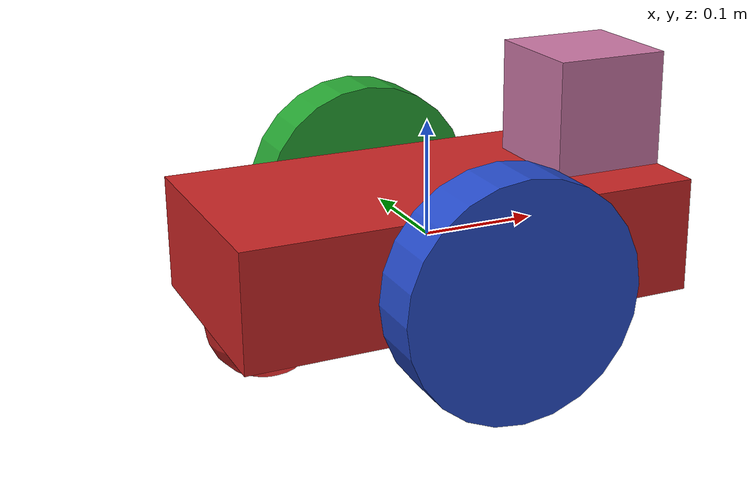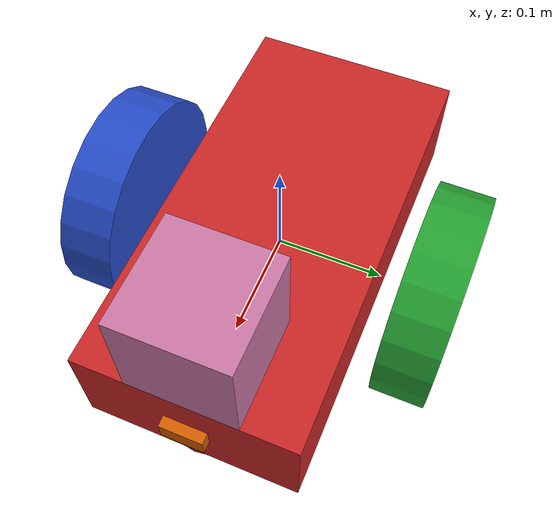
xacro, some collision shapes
<?xml version='1.0'?>

<robot name="udacity_bot" xmlns:xacro="http://www.ros.org/wiki/xacro">

  <xacro:include filename="$(find slam-simulation)/urdf/udacity_bot.gazebo" />

  <link name="robot_footprint"></link>

  <joint name="robot_footprint_joint" type="fixed">
    <origin xyz="0 0 0" rpy="0 0 0" />
    <parent link="robot_footprint"/>
    <child link="chassis" />
  </joint>

  <link name='chassis'>
    <pose>0 0 0.1 0 0 0</pose>

    <inertial>
      <mass value="15.0"/>
      <origin xyz="0.0 0 0" rpy="0 0 0"/>
      <inertia
          ixx="0.3" ixy="0" ixz="0"
          iyy="0.3" iyz="0"
          izz="0.3"
	  />
    </inertial>

    <collision name='collision'>
      <origin xyz="0 0 0" rpy=" 0 0 0"/>
      <geometry>
        <box size=".4 .2 .1"/>
      </geometry>
    </collision>

    <visual name='chassis_visual'>
      <origin xyz="0 0 0" rpy=" 0 0 0"/>
      <geometry>
        <box size=".4 .2 .1"/>
      </geometry>
    </visual>

    <collision name='back_caster_collision'>
      <origin xyz="-0.15 0 -0.05" rpy=" 0 0 0"/>
      <geometry>
        <sphere radius="0.05"/>
      </geometry>
      <surface>
        <friction>
          <ode>
            <mu>0</mu>
            <mu2>0</mu2>
            <slip1>1.0</slip1>
            <slip2>1.0</slip2>
          </ode>
        </friction>
      </surface>
    </collision>

    <visual name='back_caster_visual'>
      <origin xyz="-0.15 0 -0.05" rpy=" 0 0 0"/>
      <geometry>
        <sphere radius="0.05"/>
      </geometry>
    </visual>

    <collision name='front_caster_collision'>
      <origin xyz="0.15 0 -0.05" rpy=" 0 0 0"/>
      <geometry>
        <sphere radius="0.05"/>
      </geometry>
      <surface>
        <friction>
          <ode>
            <mu>0</mu>
            <mu2>0</mu2>
            <slip1>1.0</slip1>
            <slip2>1.0</slip2>
          </ode>
        </friction>
      </surface>
    </collision>

    <visual name='front_caster_visual'>
      <origin xyz="0.15 0 -0.05" rpy=" 0 0 0"/>
      <geometry>
        <sphere radius="0.05"/>
      </geometry>
    </visual>

  </link>

  <link name='right_wheel'>
    <pose>0 0 0 0 0 0</pose>

    <inertial>
      <mass value="5.0"/>
      <origin xyz="0.0 0 0" rpy="0 1.5707 1.5707"/>
      <inertia
          ixx="0.1" ixy="0" ixz="0"
          iyy="0.1" iyz="0"
          izz="0.1"
	  />
    </inertial>

    <collision name='right_wheel_collision'>
      <origin xyz="0 0 0" rpy="0 1.5707 1.5707"/>
      <geometry>
        <cylinder radius="0.1" length="0.05"/>
      </geometry>
      <surface>
        <friction>
          <ode>
            <mu>0</mu>
            <mu2>0</mu2>
            <slip1>1.0</slip1>
            <slip2>1.0</slip2>
          </ode>
        </friction>
      </surface>
    </collision>

    <visual name='right_wheel_visual'>
      <origin xyz="0 0 0" rpy="0 1.5707 1.5707"/>
      <geometry>
	<cylinder radius="0.1" length="0.05"/>
      </geometry>
    </visual>
  </link>

  <joint type="continuous" name="right_wheel_hinge">
    <origin xyz="0 -0.15 0" rpy="0 0 0"/>
    <child link="right_wheel"/>
    <parent link="chassis"/>
    <axis xyz="0 1 0" rpy="0 0 0"/>
    <limit effort="10000" velocity="1000"/>
    <joint_properties damping="1.0" friction="1.0"/>
  </joint>

  <link name='left_wheel'>
    <pose>0 0 0 0 0 0</pose>

    <inertial>
      <mass value="5.0"/>
      <origin xyz="0.0 0 0" rpy="0 1.5707 1.5707"/>
      <inertia
          ixx="0.1" ixy="0" ixz="0"
          iyy="0.1" iyz="0"
          izz="0.1"
	  />
    </inertial>

    <collision name='left_wheel_collision'>
      <origin xyz="0 0 0" rpy="0 1.5707 1.5707"/>
      <geometry>
        <cylinder radius="0.1" length="0.05"/>
      </geometry>
      <surface>
        <friction>
          <ode>
            <mu>0</mu>
            <mu2>0</mu2>
            <slip1>1.0</slip1>
            <slip2>1.0</slip2>
          </ode>
        </friction>
      </surface>
    </collision>

    <visual name='left_wheel_visual'>
      <origin xyz="0 0 0" rpy="0 1.5707 1.5707"/>
      <geometry>
	<cylinder radius="0.1" length="0.05"/>
      </geometry>
    </visual>
  </link>

  <joint type="continuous" name="left_wheel_hinge">
    <origin xyz="0 0.15 0" rpy="0 0 0"/>
    <child link="left_wheel"/>
    <parent link="chassis"/>
    <axis xyz="0 1 0" rpy="0 0 0"/>
    <limit effort="10000" velocity="1000"/>
    <joint_properties damping="1.0" friction="1.0"/>
  </joint>

  <link name='camera_link'>
    <pose>0 0 0 0 0 0</pose>
    <inertial>
      <mass value="0"/>
      <origin xyz="0.0 0 0" rpy="0 0 0"/>
      <inertia
          ixx="1e-6" ixy="0" ixz="0"
          iyy="1e-6" iyz="0"
          izz="1e-6"
	  />
    </inertial>
  </link>

  <joint type="fixed" name="camera_joint">
    <origin xyz="0 0 0" rpy="-1.57 0 -1.57"/>
    <child link="camera_link"/>
    <parent link="chassis"/>
  </joint>

  <link name='camera_rgbd_frame'>
    <pose>0 0 0 0 0 0</pose>
    <inertial>
      <mass value="0.1"/>
      <origin xyz="0.0 0 0" rpy="0 0 0"/>
      <inertia
          ixx="1e-6" ixy="0" ixz="0"
          iyy="1e-6" iyz="0"
          izz="1e-6"
	  />
    </inertial>

    <collision name='camera_rgb_collision'>
      <origin xyz="0 0 0" rpy="0 0 0"/>
      <geometry>
	<box size="0.02 0.04 0.02"/>
      </geometry>
    </collision>

    <visual name='camera_rgb_visual'>
      <origin xyz="0 0 0" rpy="0 0 0"/>
      <geometry>
	<box size="0.02 0.04 0.02"/>
      </geometry>
    </visual>
  </link>

  <joint type="fixed" name="camera_rgb_joint">
    <origin xyz="0.2 0 0" rpy="0 0 0"/>
    <child link="camera_rgbd_frame"/>
    <parent link="chassis"/>
  </joint>

  <link name='hokuyo'>
    <pose>0 0 0 0 0 0</pose>
    <inertial>
      <mass value="0.1"/>
      <origin xyz="0.0 0 0" rpy="0 0 0"/>
      <inertia
          ixx="1e-6" ixy="0" ixz="0"
          iyy="1e-6" iyz="0"
          izz="1e-6"
	  />
    </inertial>

    <collision name='hokuyo_collision'>
      <origin xyz="0 0 0" rpy="0 0 0"/>
      <geometry>
	<box size="0.1 0.1 0.1"/>
      </geometry>
    </collision>

    <visual name='hokuyo_visual'>
      <origin xyz="0 0 0" rpy="0 0 0"/>
      <geometry>
	<mesh filename="package://slam-simulation/meshes/hokuyo.dae"/>
      </geometry>
    </visual>
  </link>

  <joint type="fixed" name="hokuyo_joint">
    <origin xyz="0.15 0 0.1" rpy="0 0 0"/>
    <child link="hokuyo"/>
    <parent link="chassis"/>
  </joint>

  <gazebo reference="chassis">
    <material>Gazebo/Red</material>
  </gazebo>
  <gazebo reference="left_wheel">
    <material>Gazebo/Green</material>
  </gazebo>
  <gazebo reference="right_wheel">
    <material>Gazebo/Blue</material>
  </gazebo>
</robot>
